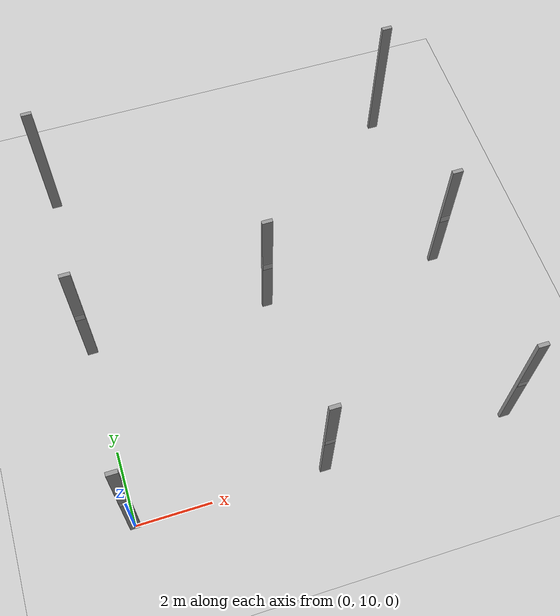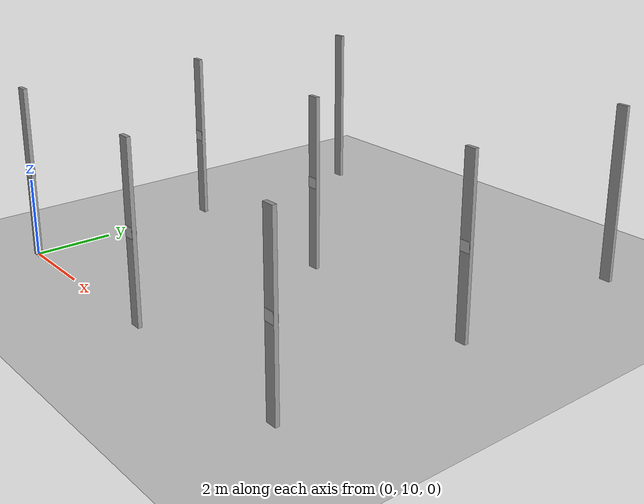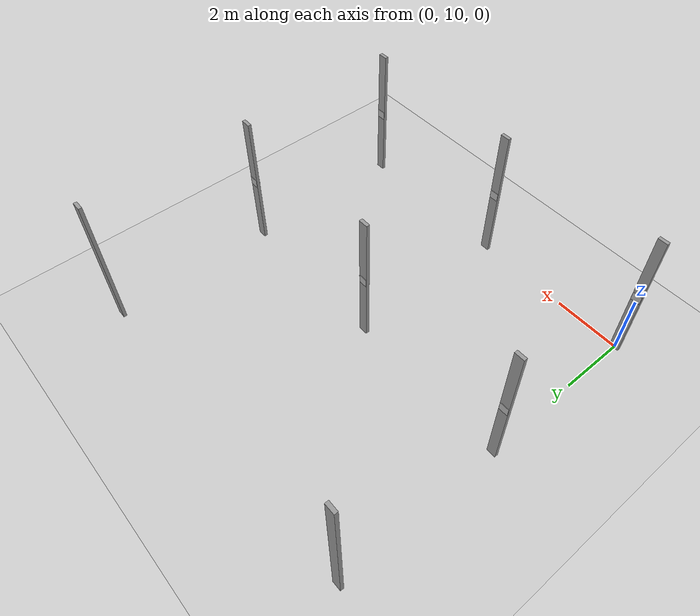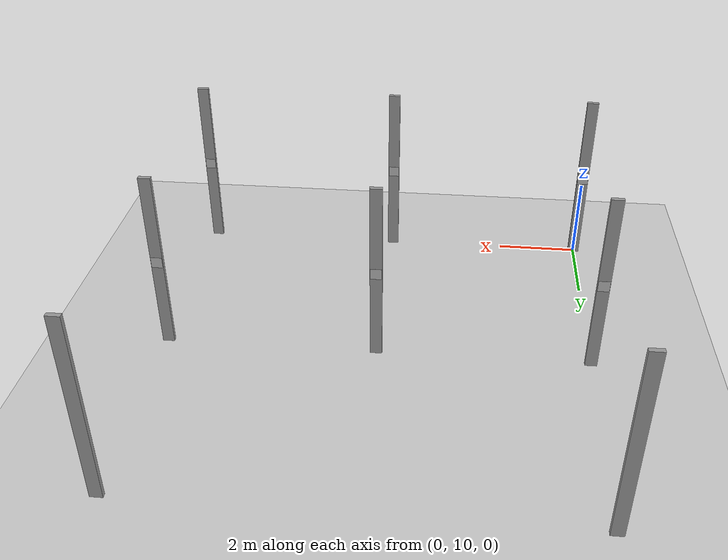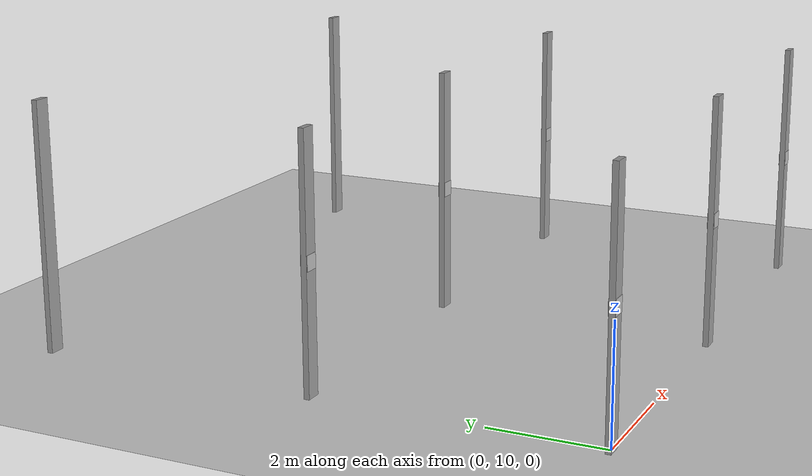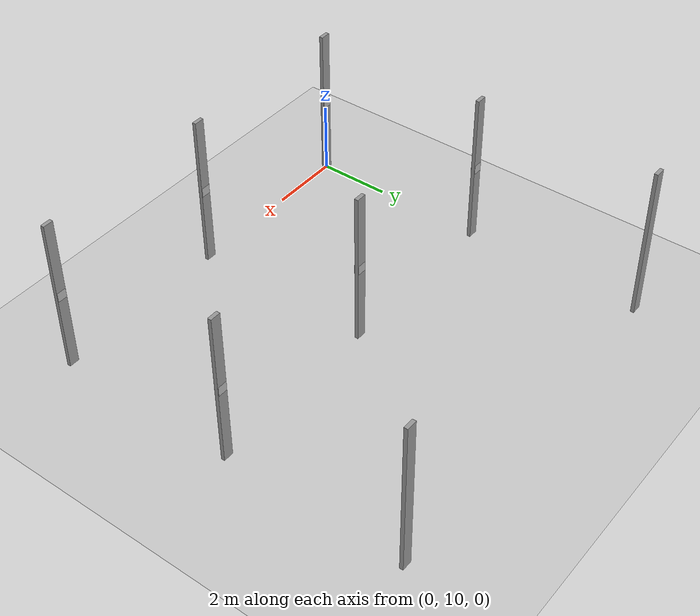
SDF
<sdf version="1.7">
 <world name="default">
  <model name="ground_plane">
   <static>1</static>
   <link name="link">
    <collision name="collision">
     <geometry><plane><normal>0 0 1</normal><size>150 150</size></plane></geometry>
     <surface><friction><ode><mu>100</mu><mu2>50</mu2></ode></friction></surface>
    </collision>
    <visual name="visual">
     <cast_shadows>0</cast_shadows>
     <geometry><plane><normal>0 0 1</normal><size>150 150</size></plane></geometry>
     <material>
      <script><uri>file://media/materials/scripts/gazebo.material</uri><name>Gazebo/Grey</name></script>
     </material>
    </visual>
   </link>
  </model>
  <model name="pilar">
   <link name="link_0">
    <inertial>
     <mass>0.325317</mass>
     <inertia>
      <ixx>0.52756</ixx>
      <ixy>0</ixy>
      <ixz>0</ixz>
      <iyy>0.527878</iyy>
      <iyz>0</iyz>
      <izz>0.00401833</izz>
     </inertia>
    </inertial>
    <pose>-0 0 3e-06 0 -0 0</pose>
    <visual name="visual">
     <geometry><box><size>0.2800 0.1 4.40362</size></box></geometry>
     <material>
      <lighting>1</lighting>
      <script><uri>file://media/materials/scripts/gazebo.material</uri><name>Gazebo/Grey</name></script>
      <shader type="pixel"/>
     </material>
    </visual>
    <collision name="collision">
     <geometry><box><size>0.282819 0.261223 4.40362</size></box></geometry>
     <surface>
      <friction>
       <ode><mu>100</mu><mu2>100</mu2><fdir1>0 0 0</fdir1><slip1>0</slip1><slip2>0</slip2></ode>
       <torsional>
        <coefficient>1</coefficient>
        <patch_radius>0</patch_radius>
        <surface_radius>0</surface_radius>
        <use_patch_radius>1</use_patch_radius>
        <ode><slip>0</slip></ode>
       </torsional>
      </friction>
      <bounce><restitution_coefficient>0</restitution_coefficient><threshold>1e+06</threshold></bounce>
      <contact>
       <collide_without_contact>0</collide_without_contact>
       <collide_without_contact_bitmask>1</collide_without_contact_bitmask>
       <collide_bitmask>1</collide_bitmask>
       <ode>
        <soft_cfm>0</soft_cfm>
        <soft_erp>0.2</soft_erp>
        <kp>1e+13</kp>
        <kd>1</kd>
        <max_vel>0.01</max_vel>
        <min_depth>0</min_depth>
       </ode>
       <bullet>
        <split_impulse>1</split_impulse>
        <split_impulse_penetration_threshold>-0.01</split_impulse_penetration_threshold>
        <soft_cfm>0</soft_cfm>
        <soft_erp>0.2</soft_erp>
        <kp>1e+13</kp>
        <kd>1</kd>
       </bullet>
      </contact>
     </surface>
    </collision>
   </link>
   <static>1</static>
   <pose>0.000 10.000 2.15473 0 -0 0</pose>
  </model>
  <model name="pilar_1">
   <link name="link_0">
    <inertial>
     <mass>0.325317</mass>
     <inertia>
      <ixx>0.52756</ixx>
      <ixy>0</ixy>
      <ixz>0</ixz>
      <iyy>0.527878</iyy>
      <iyz>0</iyz>
      <izz>0.00401833</izz>
     </inertia>
    </inertial>
    <pose>-0 0 3e-06 0 -0 0</pose>
    <visual name="visual">
     <geometry><box><size>0.2800 0.1 4.40362</size></box></geometry>
     <material>
      <lighting>1</lighting>
      <script><uri>file://media/materials/scripts/gazebo.material</uri><name>Gazebo/Grey</name></script>
      <shader type="pixel"/>
     </material>
    </visual>
    <collision name="collision">
     <geometry><box><size>0.282819 0.261223 4.40362</size></box></geometry>
     <surface>
      <friction>
       <ode><mu>100</mu><mu2>100</mu2><fdir1>0 0 0</fdir1><slip1>0</slip1><slip2>0</slip2></ode>
       <torsional>
        <coefficient>1</coefficient>
        <patch_radius>0</patch_radius>
        <surface_radius>0</surface_radius>
        <use_patch_radius>1</use_patch_radius>
        <ode><slip>0</slip></ode>
       </torsional>
      </friction>
      <bounce><restitution_coefficient>0</restitution_coefficient><threshold>1e+06</threshold></bounce>
      <contact>
       <collide_without_contact>0</collide_without_contact>
       <collide_without_contact_bitmask>1</collide_without_contact_bitmask>
       <collide_bitmask>1</collide_bitmask>
       <ode>
        <soft_cfm>0</soft_cfm>
        <soft_erp>0.2</soft_erp>
        <kp>1e+13</kp>
        <kd>1</kd>
        <max_vel>0.01</max_vel>
        <min_depth>0</min_depth>
       </ode>
       <bullet>
        <split_impulse>1</split_impulse>
        <split_impulse_penetration_threshold>-0.01</split_impulse_penetration_threshold>
        <soft_cfm>0</soft_cfm>
        <soft_erp>0.2</soft_erp>
        <kp>1e+13</kp>
        <kd>1</kd>
       </bullet>
      </contact>
     </surface>
    </collision>
   </link>
   <static>1</static>
   <pose>0.000 15 2.15473 0 -0 0</pose>
  </model>
  <model name="pilar_2">
   <link name="link_0">
    <inertial>
     <mass>0.325317</mass>
     <inertia>
      <ixx>0.52756</ixx>
      <ixy>0</ixy>
      <ixz>0</ixz>
      <iyy>0.527878</iyy>
      <iyz>0</iyz>
      <izz>0.00401833</izz>
     </inertia>
    </inertial>
    <pose>-0 0 3e-06 0 -0 0</pose>
    <visual name="visual">
     <geometry><box><size>0.2800 0.1 4.40362</size></box></geometry>
     <material>
      <lighting>1</lighting>
      <script><uri>file://media/materials/scripts/gazebo.material</uri><name>Gazebo/Grey</name></script>
      <shader type="pixel"/>
     </material>
    </visual>
    <collision name="collision">
     <geometry><box><size>0.282819 0.261223 4.40362</size></box></geometry>
     <surface>
      <friction>
       <ode><mu>100</mu><mu2>100</mu2><fdir1>0 0 0</fdir1><slip1>0</slip1><slip2>0</slip2></ode>
       <torsional>
        <coefficient>1</coefficient>
        <patch_radius>0</patch_radius>
        <surface_radius>0</surface_radius>
        <use_patch_radius>1</use_patch_radius>
        <ode><slip>0</slip></ode>
       </torsional>
      </friction>
      <bounce><restitution_coefficient>0</restitution_coefficient><threshold>1e+06</threshold></bounce>
      <contact>
       <collide_without_contact>0</collide_without_contact>
       <collide_without_contact_bitmask>1</collide_without_contact_bitmask>
       <collide_bitmask>1</collide_bitmask>
       <ode>
        <soft_cfm>0</soft_cfm>
        <soft_erp>0.2</soft_erp>
        <kp>1e+13</kp>
        <kd>1</kd>
        <max_vel>0.01</max_vel>
        <min_depth>0</min_depth>
       </ode>
       <bullet>
        <split_impulse>1</split_impulse>
        <split_impulse_penetration_threshold>-0.01</split_impulse_penetration_threshold>
        <soft_cfm>0</soft_cfm>
        <soft_erp>0.2</soft_erp>
        <kp>1e+13</kp>
        <kd>1</kd>
       </bullet>
      </contact>
     </surface>
    </collision>
   </link>
   <static>1</static>
   <pose>0.000 20 2.15473 0 -0 0</pose>
  </model>
  <model name="pilar_5">
   <link name="link_0">
    <inertial>
     <mass>0.325317</mass>
     <inertia>
      <ixx>0.52756</ixx>
      <ixy>0</ixy>
      <ixz>0</ixz>
      <iyy>0.527878</iyy>
      <iyz>0</iyz>
      <izz>0.00401833</izz>
     </inertia>
    </inertial>
    <pose>-0 0 3e-06 0 -0 0</pose>
    <visual name="visual">
     <geometry><box><size>0.2800 0.1 4.40362</size></box></geometry>
     <material>
      <lighting>1</lighting>
      <script><uri>file://media/materials/scripts/gazebo.material</uri><name>Gazebo/Grey</name></script>
      <shader type="pixel"/>
     </material>
    </visual>
    <collision name="collision">
     <geometry><box><size>0.282819 0.261223 4.40362</size></box></geometry>
     <surface>
      <friction>
       <ode><mu>100</mu><mu2>100</mu2><fdir1>0 0 0</fdir1><slip1>0</slip1><slip2>0</slip2></ode>
       <torsional>
        <coefficient>1</coefficient>
        <patch_radius>0</patch_radius>
        <surface_radius>0</surface_radius>
        <use_patch_radius>1</use_patch_radius>
        <ode><slip>0</slip></ode>
       </torsional>
      </friction>
      <bounce><restitution_coefficient>0</restitution_coefficient><threshold>1e+06</threshold></bounce>
      <contact>
       <collide_without_contact>0</collide_without_contact>
       <collide_without_contact_bitmask>1</collide_without_contact_bitmask>
       <collide_bitmask>1</collide_bitmask>
       <ode>
        <soft_cfm>0</soft_cfm>
        <soft_erp>0.2</soft_erp>
        <kp>1e+13</kp>
        <kd>1</kd>
        <max_vel>0.01</max_vel>
        <min_depth>0</min_depth>
       </ode>
       <bullet>
        <split_impulse>1</split_impulse>
        <split_impulse_penetration_threshold>-0.01</split_impulse_penetration_threshold>
        <soft_cfm>0</soft_cfm>
        <soft_erp>0.2</soft_erp>
        <kp>1e+13</kp>
        <kd>1</kd>
       </bullet>
      </contact>
     </surface>
    </collision>
   </link>
   <static>1</static>
   <pose>5.000 10.000 2.15473 0 -0 0</pose>
  </model>
  <model name="pilar_6">
   <link name="link_0">
    <inertial>
     <mass>0.325317</mass>
     <inertia>
      <ixx>0.52756</ixx>
      <ixy>0</ixy>
      <ixz>0</ixz>
      <iyy>0.527878</iyy>
      <iyz>0</iyz>
      <izz>0.00401833</izz>
     </inertia>
    </inertial>
    <pose>-0 0 3e-06 0 -0 0</pose>
    <visual name="visual">
     <geometry><box><size>0.2800 0.1 4.40362</size></box></geometry>
     <material>
      <lighting>1</lighting>
      <script><uri>file://media/materials/scripts/gazebo.material</uri><name>Gazebo/Grey</name></script>
      <shader type="pixel"/>
     </material>
    </visual>
    <collision name="collision">
     <geometry><box><size>0.282819 0.261223 4.40362</size></box></geometry>
     <surface>
      <friction>
       <ode><mu>100</mu><mu2>100</mu2><fdir1>0 0 0</fdir1><slip1>0</slip1><slip2>0</slip2></ode>
       <torsional>
        <coefficient>1</coefficient>
        <patch_radius>0</patch_radius>
        <surface_radius>0</surface_radius>
        <use_patch_radius>1</use_patch_radius>
        <ode><slip>0</slip></ode>
       </torsional>
      </friction>
      <bounce><restitution_coefficient>0</restitution_coefficient><threshold>1e+06</threshold></bounce>
      <contact>
       <collide_without_contact>0</collide_without_contact>
       <collide_without_contact_bitmask>1</collide_without_contact_bitmask>
       <collide_bitmask>1</collide_bitmask>
       <ode>
        <soft_cfm>0</soft_cfm>
        <soft_erp>0.2</soft_erp>
        <kp>1e+13</kp>
        <kd>1</kd>
        <max_vel>0.01</max_vel>
        <min_depth>0</min_depth>
       </ode>
       <bullet>
        <split_impulse>1</split_impulse>
        <split_impulse_penetration_threshold>-0.01</split_impulse_penetration_threshold>
        <soft_cfm>0</soft_cfm>
        <soft_erp>0.2</soft_erp>
        <kp>1e+13</kp>
        <kd>1</kd>
       </bullet>
      </contact>
     </surface>
    </collision>
   </link>
   <static>1</static>
   <pose>5.000 15 2.15473 0 -0 0</pose>
  </model>
  <model name="pilar_10">
   <link name="link_0">
    <inertial>
     <mass>0.325317</mass>
     <inertia>
      <ixx>0.52756</ixx>
      <ixy>0</ixy>
      <ixz>0</ixz>
      <iyy>0.527878</iyy>
      <iyz>0</iyz>
      <izz>0.00401833</izz>
     </inertia>
    </inertial>
    <pose>-0 0 3e-06 0 -0 0</pose>
    <visual name="visual">
     <geometry><box><size>0.2800 0.1 4.40362</size></box></geometry>
     <material>
      <lighting>1</lighting>
      <script><uri>file://media/materials/scripts/gazebo.material</uri><name>Gazebo/Grey</name></script>
      <shader type="pixel"/>
     </material>
    </visual>
    <collision name="collision">
     <geometry><box><size>0.282819 0.261223 4.40362</size></box></geometry>
     <surface>
      <friction>
       <ode><mu>100</mu><mu2>100</mu2><fdir1>0 0 0</fdir1><slip1>0</slip1><slip2>0</slip2></ode>
       <torsional>
        <coefficient>1</coefficient>
        <patch_radius>0</patch_radius>
        <surface_radius>0</surface_radius>
        <use_patch_radius>1</use_patch_radius>
        <ode><slip>0</slip></ode>
       </torsional>
      </friction>
      <bounce><restitution_coefficient>0</restitution_coefficient><threshold>1e+06</threshold></bounce>
      <contact>
       <collide_without_contact>0</collide_without_contact>
       <collide_without_contact_bitmask>1</collide_without_contact_bitmask>
       <collide_bitmask>1</collide_bitmask>
       <ode>
        <soft_cfm>0</soft_cfm>
        <soft_erp>0.2</soft_erp>
        <kp>1e+13</kp>
        <kd>1</kd>
        <max_vel>0.01</max_vel>
        <min_depth>0</min_depth>
       </ode>
       <bullet>
        <split_impulse>1</split_impulse>
        <split_impulse_penetration_threshold>-0.01</split_impulse_penetration_threshold>
        <soft_cfm>0</soft_cfm>
        <soft_erp>0.2</soft_erp>
        <kp>1e+13</kp>
        <kd>1</kd>
       </bullet>
      </contact>
     </surface>
    </collision>
   </link>
   <static>1</static>
   <pose>10.000 10 2.15473 0 -0 0</pose>
  </model>
  <model name="pilar_11">
   <link name="link_0">
    <inertial>
     <mass>0.325317</mass>
     <inertia>
      <ixx>0.52756</ixx>
      <ixy>0</ixy>
      <ixz>0</ixz>
      <iyy>0.527878</iyy>
      <iyz>0</iyz>
      <izz>0.00401833</izz>
     </inertia>
    </inertial>
    <pose>-0 0 3e-06 0 -0 0</pose>
    <visual name="visual">
     <geometry><box><size>0.2800 0.1 4.40362</size></box></geometry>
     <material>
      <lighting>1</lighting>
      <script><uri>file://media/materials/scripts/gazebo.material</uri><name>Gazebo/Grey</name></script>
      <shader type="pixel"/>
     </material>
    </visual>
    <collision name="collision">
     <geometry><box><size>0.282819 0.261223 4.40362</size></box></geometry>
     <surface>
      <friction>
       <ode><mu>100</mu><mu2>100</mu2><fdir1>0 0 0</fdir1><slip1>0</slip1><slip2>0</slip2></ode>
       <torsional>
        <coefficient>1</coefficient>
        <patch_radius>0</patch_radius>
        <surface_radius>0</surface_radius>
        <use_patch_radius>1</use_patch_radius>
        <ode><slip>0</slip></ode>
       </torsional>
      </friction>
      <bounce><restitution_coefficient>0</restitution_coefficient><threshold>1e+06</threshold></bounce>
      <contact>
       <collide_without_contact>0</collide_without_contact>
       <collide_without_contact_bitmask>1</collide_without_contact_bitmask>
       <collide_bitmask>1</collide_bitmask>
       <ode>
        <soft_cfm>0</soft_cfm>
        <soft_erp>0.2</soft_erp>
        <kp>1e+13</kp>
        <kd>1</kd>
        <max_vel>0.01</max_vel>
        <min_depth>0</min_depth>
       </ode>
       <bullet>
        <split_impulse>1</split_impulse>
        <split_impulse_penetration_threshold>-0.01</split_impulse_penetration_threshold>
        <soft_cfm>0</soft_cfm>
        <soft_erp>0.2</soft_erp>
        <kp>1e+13</kp>
        <kd>1</kd>
       </bullet>
      </contact>
     </surface>
    </collision>
   </link>
   <static>1</static>
   <pose>10.000 15 2.15473 0 -0 0</pose>
  </model>
  <model name="pilar_12">
   <link name="link_0">
    <inertial>
     <mass>0.325317</mass>
     <inertia>
      <ixx>0.52756</ixx>
      <ixy>0</ixy>
      <ixz>0</ixz>
      <iyy>0.527878</iyy>
      <iyz>0</iyz>
      <izz>0.00401833</izz>
     </inertia>
    </inertial>
    <pose>-0 0 3e-06 0 -0 0</pose>
    <visual name="visual">
     <geometry><box><size>0.2800 0.1 4.40362</size></box></geometry>
     <material>
      <lighting>1</lighting>
      <script><uri>file://media/materials/scripts/gazebo.material</uri><name>Gazebo/Grey</name></script>
      <shader type="pixel"/>
     </material>
    </visual>
    <collision name="collision">
     <geometry><box><size>0.282819 0.261223 4.40362</size></box></geometry>
     <surface>
      <friction>
       <ode><mu>100</mu><mu2>100</mu2><fdir1>0 0 0</fdir1><slip1>0</slip1><slip2>0</slip2></ode>
       <torsional>
        <coefficient>1</coefficient>
        <patch_radius>0</patch_radius>
        <surface_radius>0</surface_radius>
        <use_patch_radius>1</use_patch_radius>
        <ode><slip>0</slip></ode>
       </torsional>
      </friction>
      <bounce><restitution_coefficient>0</restitution_coefficient><threshold>1e+06</threshold></bounce>
      <contact>
       <collide_without_contact>0</collide_without_contact>
       <collide_without_contact_bitmask>1</collide_without_contact_bitmask>
       <collide_bitmask>1</collide_bitmask>
       <ode>
        <soft_cfm>0</soft_cfm>
        <soft_erp>0.2</soft_erp>
        <kp>1e+13</kp>
        <kd>1</kd>
        <max_vel>0.01</max_vel>
        <min_depth>0</min_depth>
       </ode>
       <bullet>
        <split_impulse>1</split_impulse>
        <split_impulse_penetration_threshold>-0.01</split_impulse_penetration_threshold>
        <soft_cfm>0</soft_cfm>
        <soft_erp>0.2</soft_erp>
        <kp>1e+13</kp>
        <kd>1</kd>
       </bullet>
      </contact>
     </surface>
    </collision>
   </link>
   <static>1</static>
   <pose>10.000 20 2.15473 0 -0 0</pose>
  </model>
  <model name="Apriltag36_11_00000">
   <link name="main">
    <visual name="main_Visual">
     <geometry><box><size>0.2625 0.12 0.2625</size></box></geometry>
     <material>
      <script>
       <uri>model://Apriltag36_11_00000/materials/scripts</uri>
       <uri>model://Apriltag36_11_00000/materials/textures</uri>
       <name>Apriltag36_11_00000</name>
      </script>
     </material>
    </visual>
   </link>
   <static>1</static>
   <pose>0.000 10.000 2.21569 0 -0 0</pose>
  </model>
  <model name="Apriltag36_11_00001">
   <link name="main">
    <visual name="main_Visual">
     <geometry><box><size>0.2625 0.12 0.2625</size></box></geometry>
     <material>
      <script>
       <uri>model://Apriltag36_11_00001/materials/scripts</uri>
       <uri>model://Apriltag36_11_00001/materials/textures</uri>
       <name>Apriltag36_11_00001</name>
      </script>
     </material>
    </visual>
   </link>
   <static>1</static>
   <pose>0.000 15.0 2.21569 0 -0 0</pose>
  </model>
  <model name="Apriltag36_11_00005">
   <link name="main">
    <visual name="main_Visual">
     <geometry><box><size>0.2625 0.12 0.2625</size></box></geometry>
     <material>
      <script>
       <uri>model://Apriltag36_11_00005/materials/scripts</uri>
       <uri>model://Apriltag36_11_00005/materials/textures</uri>
       <name>Apriltag36_11_00005</name>
      </script>
     </material>
    </visual>
   </link>
   <static>1</static>
   <pose>5.000 10.000 2.21569 0 -0 0</pose>
  </model>
  <model name="Apriltag36_11_00006">
   <link name="main">
    <visual name="main_Visual">
     <geometry><box><size>0.2625 0.12 0.2625</size></box></geometry>
     <material>
      <script>
       <uri>model://Apriltag36_11_00006/materials/scripts</uri>
       <uri>model://Apriltag36_11_00006/materials/textures</uri>
       <name>Apriltag36_11_00006</name>
      </script>
     </material>
    </visual>
   </link>
   <static>1</static>
   <pose>5.000 15.0 2.21569 0 -0 0</pose>
  </model>
  <model name="Apriltag36_11_00010">
   <link name="main">
    <visual name="main_Visual">
     <geometry><box><size>0.2625 0.12 0.2625</size></box></geometry>
     <material>
      <script>
       <uri>model://Apriltag36_11_00010/materials/scripts</uri>
       <uri>model://Apriltag36_11_00010/materials/textures</uri>
       <name>Apriltag36_11_00010</name>
      </script>
     </material>
    </visual>
   </link>
   <static>1</static>
   <pose>10.000 10.000 2.21569 0 -0 0</pose>
  </model>
  <model name="Apriltag36_11_00011">
   <link name="main">
    <visual name="main_Visual">
     <geometry><box><size>0.2625 0.12 0.2625</size></box></geometry>
     <material>
      <script>
       <uri>model://Apriltag36_11_00011/materials/scripts</uri>
       <uri>model://Apriltag36_11_00011/materials/textures</uri>
       <name>Apriltag36_11_00011</name>
      </script>
     </material>
    </visual>
   </link>
   <static>1</static>
   <pose>10.000 15.0 2.21569 0 -0 0</pose>
  </model>
 </world>
</sdf>
